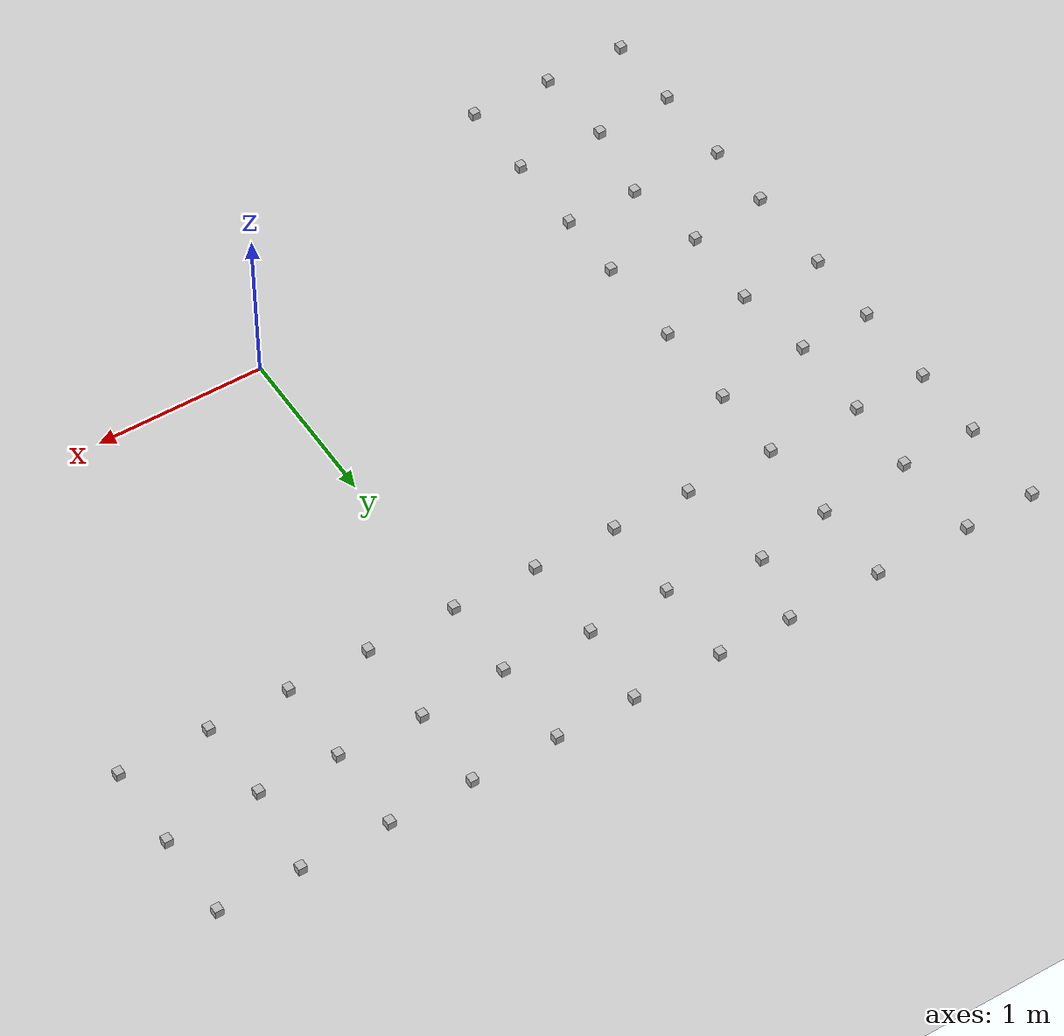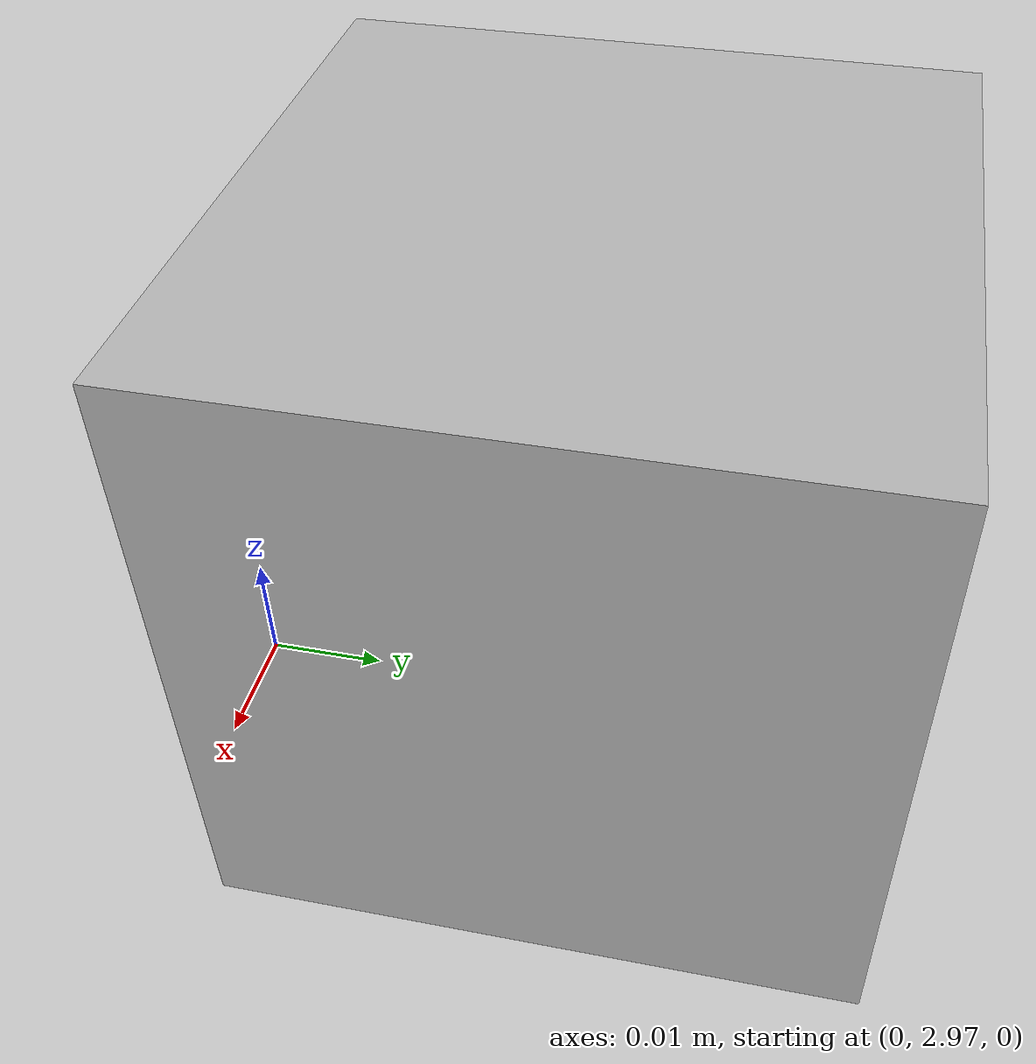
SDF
<sdf version="1.4">
 <world name="default">
  <model name="ground_plane">
   <static>1</static>
   <link name="link">
    <collision name="collision">
     <geometry><plane><normal>0 0 1</normal><size>100 100</size></plane></geometry>
     <surface><friction><ode><mu>100</mu><mu2>50</mu2></ode></friction></surface>
    </collision>
    <visual name="visual">
     <cast_shadows>0</cast_shadows>
     <geometry><plane><normal>0 0 1</normal><size>100 100</size></plane></geometry>
     <material>
      <script><uri>file://media/materials/scripts/gazebo.material</uri><name>Gazebo/Grey</name></script>
     </material>
    </visual>
    <velocity_decay><linear>0</linear><angular>0</angular></velocity_decay>
   </link>
  </model>
  <light name="sun" type="directional">
   <pose>0 0 10 0 -0 0</pose>
   <diffuse>0.8 0.8 0.8 1</diffuse>
   <specular>0.2 0.2 0.2 1</specular>
   <attenuation>
    <range>1000</range>
    <constant>0.9</constant>
    <linear>0.01</linear>
    <quadratic>0.001</quadratic>
   </attenuation>
   <direction>-0.5 0.1 -0.9</direction>
  </light>
  <plugin name="SetupWorld" filename="libgazebo_plugins.so"/>
  <physics type="ode">
   <max_step_size>0.001</max_step_size>
   <real_time_factor>1</real_time_factor>
   <real_time_update_rate>1000</real_time_update_rate>
   <gravity>0 0 -9.8</gravity>
  </physics>
  <scene><ambient>0.4 0.4 0.4 1</ambient><background>0.7 0.7 0.7 1</background><shadows>1</shadows></scene>
  <spherical_coordinates>
   <surface_model>EARTH_WGS84</surface_model>
   <latitude_deg>0</latitude_deg>
   <longitude_deg>0</longitude_deg>
   <elevation>0</elevation>
   <heading_deg>0</heading_deg>
  </spherical_coordinates>
  <model name="at0">
   <static>1</static>
   <link name="link">
    <pose>0 0 0.025 0 -0 0</pose>
    <inertial>
     <mass>0.1</mass>
     <inertia><ixx>4e-05</ixx><ixy>0</ixy><ixz>0</ixz><iyy>4e-05</iyy><iyz>0</iyz><izz>4e-05</izz></inertia>
    </inertial>
    <visual name="visual">
     <transparency>0.1</transparency>
     <geometry><box><size>0.05 0.05 0.05</size></box></geometry>
     <material>
      <script>
       <uri>model://at0/materials/scripts</uri>
       <uri>model://at0/materials/textures</uri>
       <name>at0/Diffuse</name>
      </script>
     </material>
    </visual>
    <collision name="collision">
     <pose>0 0 -0.0125 0 -0 0</pose>
     <geometry><box><size>0.05 0.05 0.025</size></box></geometry>
     <surface><friction><ode><mu>0.8</mu><mu2>0.7</mu2></ode></friction></surface>
    </collision>
    <velocity_decay><linear>0</linear><angular>0</angular></velocity_decay>
   </link>
   <pose>-1.54043 2.592 0 0 -0 0</pose>
  </model>
  <model name="at0_0">
   <static>1</static>
   <link name="link">
    <pose>0 0 0.025 0 -0 0</pose>
    <inertial>
     <mass>0.1</mass>
     <inertia><ixx>4e-05</ixx><ixy>0</ixy><ixz>0</ixz><iyy>4e-05</iyy><iyz>0</iyz><izz>4e-05</izz></inertia>
    </inertial>
    <visual name="visual">
     <transparency>0.1</transparency>
     <geometry><box><size>0.05 0.05 0.05</size></box></geometry>
     <material>
      <script>
       <uri>model://at0/materials/scripts</uri>
       <uri>model://at0/materials/textures</uri>
       <name>at0/Diffuse</name>
      </script>
     </material>
    </visual>
    <collision name="collision">
     <pose>0 0 -0.0125 0 -0 0</pose>
     <geometry><box><size>0.05 0.05 0.025</size></box></geometry>
     <surface><friction><ode><mu>0.8</mu><mu2>0.7</mu2></ode></friction></surface>
    </collision>
    <velocity_decay><linear>0</linear><angular>0</angular></velocity_decay>
   </link>
   <pose>-2 2 0 0 -0 0</pose>
  </model>
  <model name="at0_1">
   <static>1</static>
   <link name="link">
    <pose>0 0 0.025 0 -0 0</pose>
    <inertial>
     <mass>0.1</mass>
     <inertia><ixx>4e-05</ixx><ixy>0</ixy><ixz>0</ixz><iyy>4e-05</iyy><iyz>0</iyz><izz>4e-05</izz></inertia>
    </inertial>
    <visual name="visual">
     <transparency>0.1</transparency>
     <geometry><box><size>0.05 0.05 0.05</size></box></geometry>
     <material>
      <script>
       <uri>model://at0/materials/scripts</uri>
       <uri>model://at0/materials/textures</uri>
       <name>at0/Diffuse</name>
      </script>
     </material>
    </visual>
    <collision name="collision">
     <pose>0 0 -0.0125 0 -0 0</pose>
     <geometry><box><size>0.05 0.05 0.025</size></box></geometry>
     <surface><friction><ode><mu>0.8</mu><mu2>0.7</mu2></ode></friction></surface>
    </collision>
    <velocity_decay><linear>0</linear><angular>0</angular></velocity_decay>
   </link>
   <pose>-2 2.50634 0 0 -0 0</pose>
  </model>
  <model name="at0_2">
   <static>1</static>
   <link name="link">
    <pose>0 0 0.025 0 -0 0</pose>
    <inertial>
     <mass>0.1</mass>
     <inertia><ixx>4e-05</ixx><ixy>0</ixy><ixz>0</ixz><iyy>4e-05</iyy><iyz>0</iyz><izz>4e-05</izz></inertia>
    </inertial>
    <visual name="visual">
     <transparency>0.1</transparency>
     <geometry><box><size>0.05 0.05 0.05</size></box></geometry>
     <material>
      <script>
       <uri>model://at0/materials/scripts</uri>
       <uri>model://at0/materials/textures</uri>
       <name>at0/Diffuse</name>
      </script>
     </material>
    </visual>
    <collision name="collision">
     <pose>0 0 -0.0125 0 -0 0</pose>
     <geometry><box><size>0.05 0.05 0.025</size></box></geometry>
     <surface><friction><ode><mu>0.8</mu><mu2>0.7</mu2></ode></friction></surface>
    </collision>
    <velocity_decay><linear>0</linear><angular>0</angular></velocity_decay>
   </link>
   <pose>-2 3 0 0 -0 0</pose>
  </model>
  <model name="at0_3">
   <static>1</static>
   <link name="link">
    <pose>0 0 0.025 0 -0 0</pose>
    <inertial>
     <mass>0.1</mass>
     <inertia><ixx>4e-05</ixx><ixy>0</ixy><ixz>0</ixz><iyy>4e-05</iyy><iyz>0</iyz><izz>4e-05</izz></inertia>
    </inertial>
    <visual name="visual">
     <transparency>0.1</transparency>
     <geometry><box><size>0.05 0.05 0.05</size></box></geometry>
     <material>
      <script>
       <uri>model://at0/materials/scripts</uri>
       <uri>model://at0/materials/textures</uri>
       <name>at0/Diffuse</name>
      </script>
     </material>
    </visual>
    <collision name="collision">
     <pose>0 0 -0.0125 0 -0 0</pose>
     <geometry><box><size>0.05 0.05 0.025</size></box></geometry>
     <surface><friction><ode><mu>0.8</mu><mu2>0.7</mu2></ode></friction></surface>
    </collision>
    <velocity_decay><linear>0</linear><angular>0</angular></velocity_decay>
   </link>
   <pose>-1.43683 3 0 0 -0 0</pose>
  </model>
  <model name="at0_4">
   <static>1</static>
   <link name="link">
    <pose>0 0 0.025 0 -0 0</pose>
    <inertial>
     <mass>0.1</mass>
     <inertia><ixx>4e-05</ixx><ixy>0</ixy><ixz>0</ixz><iyy>4e-05</iyy><iyz>0</iyz><izz>4e-05</izz></inertia>
    </inertial>
    <visual name="visual">
     <transparency>0.1</transparency>
     <geometry><box><size>0.05 0.05 0.05</size></box></geometry>
     <material>
      <script>
       <uri>model://at0/materials/scripts</uri>
       <uri>model://at0/materials/textures</uri>
       <name>at0/Diffuse</name>
      </script>
     </material>
    </visual>
    <collision name="collision">
     <pose>0 0 -0.0125 0 -0 0</pose>
     <geometry><box><size>0.05 0.05 0.025</size></box></geometry>
     <surface><friction><ode><mu>0.8</mu><mu2>0.7</mu2></ode></friction></surface>
    </collision>
    <velocity_decay><linear>0</linear><angular>0</angular></velocity_decay>
   </link>
   <pose>-1 3 0 0 -0 0</pose>
  </model>
  <model name="at0_5">
   <static>1</static>
   <link name="link">
    <pose>0 0 0.025 0 -0 0</pose>
    <inertial>
     <mass>0.1</mass>
     <inertia><ixx>4e-05</ixx><ixy>0</ixy><ixz>0</ixz><iyy>4e-05</iyy><iyz>0</iyz><izz>4e-05</izz></inertia>
    </inertial>
    <visual name="visual">
     <transparency>0.1</transparency>
     <geometry><box><size>0.05 0.05 0.05</size></box></geometry>
     <material>
      <script>
       <uri>model://at0/materials/scripts</uri>
       <uri>model://at0/materials/textures</uri>
       <name>at0/Diffuse</name>
      </script>
     </material>
    </visual>
    <collision name="collision">
     <pose>0 0 -0.0125 0 -0 0</pose>
     <geometry><box><size>0.05 0.05 0.025</size></box></geometry>
     <surface><friction><ode><mu>0.8</mu><mu2>0.7</mu2></ode></friction></surface>
    </collision>
    <velocity_decay><linear>0</linear><angular>0</angular></velocity_decay>
   </link>
   <pose>-1 2 0 0 -0 0</pose>
  </model>
  <model name="at0_6">
   <static>1</static>
   <link name="link">
    <pose>0 0 0.025 0 -0 0</pose>
    <inertial>
     <mass>0.1</mass>
     <inertia><ixx>4e-05</ixx><ixy>0</ixy><ixz>0</ixz><iyy>4e-05</iyy><iyz>0</iyz><izz>4e-05</izz></inertia>
    </inertial>
    <visual name="visual">
     <transparency>0.1</transparency>
     <geometry><box><size>0.05 0.05 0.05</size></box></geometry>
     <material>
      <script>
       <uri>model://at0/materials/scripts</uri>
       <uri>model://at0/materials/textures</uri>
       <name>at0/Diffuse</name>
      </script>
     </material>
    </visual>
    <collision name="collision">
     <pose>0 0 -0.0125 0 -0 0</pose>
     <geometry><box><size>0.05 0.05 0.025</size></box></geometry>
     <surface><friction><ode><mu>0.8</mu><mu2>0.7</mu2></ode></friction></surface>
    </collision>
    <velocity_decay><linear>0</linear><angular>0</angular></velocity_decay>
   </link>
   <pose>-1 2.50258 0 0 -0 0</pose>
  </model>
  <model name="at0_7">
   <static>1</static>
   <link name="link">
    <pose>0 0 0.025 0 -0 0</pose>
    <inertial>
     <mass>0.1</mass>
     <inertia><ixx>4e-05</ixx><ixy>0</ixy><ixz>0</ixz><iyy>4e-05</iyy><iyz>0</iyz><izz>4e-05</izz></inertia>
    </inertial>
    <visual name="visual">
     <transparency>0.1</transparency>
     <geometry><box><size>0.05 0.05 0.05</size></box></geometry>
     <material>
      <script>
       <uri>model://at0/materials/scripts</uri>
       <uri>model://at0/materials/textures</uri>
       <name>at0/Diffuse</name>
      </script>
     </material>
    </visual>
    <collision name="collision">
     <pose>0 0 -0.0125 0 -0 0</pose>
     <geometry><box><size>0.05 0.05 0.025</size></box></geometry>
     <surface><friction><ode><mu>0.8</mu><mu2>0.7</mu2></ode></friction></surface>
    </collision>
    <velocity_decay><linear>0</linear><angular>0</angular></velocity_decay>
   </link>
   <pose>-1.46869 2 0 0 -0 0</pose>
  </model>
  <model name="at0_8">
   <static>1</static>
   <link name="link">
    <pose>0 0 0.025 0 -0 0</pose>
    <inertial>
     <mass>0.1</mass>
     <inertia><ixx>4e-05</ixx><ixy>0</ixy><ixz>0</ixz><iyy>4e-05</iyy><iyz>0</iyz><izz>4e-05</izz></inertia>
    </inertial>
    <visual name="visual">
     <transparency>0.1</transparency>
     <geometry><box><size>0.05 0.05 0.05</size></box></geometry>
     <material>
      <script>
       <uri>model://at0/materials/scripts</uri>
       <uri>model://at0/materials/textures</uri>
       <name>at0/Diffuse</name>
      </script>
     </material>
    </visual>
    <collision name="collision">
     <pose>0 0 -0.0125 0 -0 0</pose>
     <geometry><box><size>0.05 0.05 0.025</size></box></geometry>
     <surface><friction><ode><mu>0.8</mu><mu2>0.7</mu2></ode></friction></surface>
    </collision>
    <velocity_decay><linear>0</linear><angular>0</angular></velocity_decay>
   </link>
   <pose>-0.469874 3 0 0 -0 0</pose>
  </model>
  <model name="at0_9">
   <static>1</static>
   <link name="link">
    <pose>0 0 0.025 0 -0 0</pose>
    <inertial>
     <mass>0.1</mass>
     <inertia><ixx>4e-05</ixx><ixy>0</ixy><ixz>0</ixz><iyy>4e-05</iyy><iyz>0</iyz><izz>4e-05</izz></inertia>
    </inertial>
    <visual name="visual">
     <transparency>0.1</transparency>
     <geometry><box><size>0.05 0.05 0.05</size></box></geometry>
     <material>
      <script>
       <uri>model://at0/materials/scripts</uri>
       <uri>model://at0/materials/textures</uri>
       <name>at0/Diffuse</name>
      </script>
     </material>
    </visual>
    <collision name="collision">
     <pose>0 0 -0.0125 0 -0 0</pose>
     <geometry><box><size>0.05 0.05 0.025</size></box></geometry>
     <surface><friction><ode><mu>0.8</mu><mu2>0.7</mu2></ode></friction></surface>
    </collision>
    <velocity_decay><linear>0</linear><angular>0</angular></velocity_decay>
   </link>
   <pose>0 3 0 0 -0 0</pose>
  </model>
  <model name="at0_10">
   <static>1</static>
   <link name="link">
    <pose>0 0 0.025 0 -0 0</pose>
    <inertial>
     <mass>0.1</mass>
     <inertia><ixx>4e-05</ixx><ixy>0</ixy><ixz>0</ixz><iyy>4e-05</iyy><iyz>0</iyz><izz>4e-05</izz></inertia>
    </inertial>
    <visual name="visual">
     <transparency>0.1</transparency>
     <geometry><box><size>0.05 0.05 0.05</size></box></geometry>
     <material>
      <script>
       <uri>model://at0/materials/scripts</uri>
       <uri>model://at0/materials/textures</uri>
       <name>at0/Diffuse</name>
      </script>
     </material>
    </visual>
    <collision name="collision">
     <pose>0 0 -0.0125 0 -0 0</pose>
     <geometry><box><size>0.05 0.05 0.025</size></box></geometry>
     <surface><friction><ode><mu>0.8</mu><mu2>0.7</mu2></ode></friction></surface>
    </collision>
    <velocity_decay><linear>0</linear><angular>0</angular></velocity_decay>
   </link>
   <pose>0 2.48596 0 0 -0 0</pose>
  </model>
  <model name="at0_11">
   <static>1</static>
   <link name="link">
    <pose>0 0 0.025 0 -0 0</pose>
    <inertial>
     <mass>0.1</mass>
     <inertia><ixx>4e-05</ixx><ixy>0</ixy><ixz>0</ixz><iyy>4e-05</iyy><iyz>0</iyz><izz>4e-05</izz></inertia>
    </inertial>
    <visual name="visual">
     <transparency>0.1</transparency>
     <geometry><box><size>0.05 0.05 0.05</size></box></geometry>
     <material>
      <script>
       <uri>model://at0/materials/scripts</uri>
       <uri>model://at0/materials/textures</uri>
       <name>at0/Diffuse</name>
      </script>
     </material>
    </visual>
    <collision name="collision">
     <pose>0 0 -0.0125 0 -0 0</pose>
     <geometry><box><size>0.05 0.05 0.025</size></box></geometry>
     <surface><friction><ode><mu>0.8</mu><mu2>0.7</mu2></ode></friction></surface>
    </collision>
    <velocity_decay><linear>0</linear><angular>0</angular></velocity_decay>
   </link>
   <pose>-0.501759 2 0 0 -0 0</pose>
  </model>
  <model name="at0_12">
   <static>1</static>
   <link name="link">
    <pose>0 0 0.025 0 -0 0</pose>
    <inertial>
     <mass>0.1</mass>
     <inertia><ixx>4e-05</ixx><ixy>0</ixy><ixz>0</ixz><iyy>4e-05</iyy><iyz>0</iyz><izz>4e-05</izz></inertia>
    </inertial>
    <visual name="visual">
     <transparency>0.1</transparency>
     <geometry><box><size>0.05 0.05 0.05</size></box></geometry>
     <material>
      <script>
       <uri>model://at0/materials/scripts</uri>
       <uri>model://at0/materials/textures</uri>
       <name>at0/Diffuse</name>
      </script>
     </material>
    </visual>
    <collision name="collision">
     <pose>0 0 -0.0125 0 -0 0</pose>
     <geometry><box><size>0.05 0.05 0.025</size></box></geometry>
     <surface><friction><ode><mu>0.8</mu><mu2>0.7</mu2></ode></friction></surface>
    </collision>
    <velocity_decay><linear>0</linear><angular>0</angular></velocity_decay>
   </link>
   <pose>-0.514878 2.51621 0 0 -0 0</pose>
  </model>
  <model name="at0_13">
   <static>1</static>
   <link name="link">
    <pose>0 0 0.025 0 -0 0</pose>
    <inertial>
     <mass>0.1</mass>
     <inertia><ixx>4e-05</ixx><ixy>0</ixy><ixz>0</ixz><iyy>4e-05</iyy><iyz>0</iyz><izz>4e-05</izz></inertia>
    </inertial>
    <visual name="visual">
     <transparency>0.1</transparency>
     <geometry><box><size>0.05 0.05 0.05</size></box></geometry>
     <material>
      <script>
       <uri>model://at0/materials/scripts</uri>
       <uri>model://at0/materials/textures</uri>
       <name>at0/Diffuse</name>
      </script>
     </material>
    </visual>
    <collision name="collision">
     <pose>0 0 -0.0125 0 -0 0</pose>
     <geometry><box><size>0.05 0.05 0.025</size></box></geometry>
     <surface><friction><ode><mu>0.8</mu><mu2>0.7</mu2></ode></friction></surface>
    </collision>
    <velocity_decay><linear>0</linear><angular>0</angular></velocity_decay>
   </link>
   <pose>0 2 0 0 -0 0</pose>
  </model>
  <model name="at0_14">
   <static>1</static>
   <link name="link">
    <pose>0 0 0.025 0 -0 0</pose>
    <inertial>
     <mass>0.1</mass>
     <inertia><ixx>4e-05</ixx><ixy>0</ixy><ixz>0</ixz><iyy>4e-05</iyy><iyz>0</iyz><izz>4e-05</izz></inertia>
    </inertial>
    <visual name="visual">
     <transparency>0.1</transparency>
     <geometry><box><size>0.05 0.05 0.05</size></box></geometry>
     <material>
      <script>
       <uri>model://at0/materials/scripts</uri>
       <uri>model://at0/materials/textures</uri>
       <name>at0/Diffuse</name>
      </script>
     </material>
    </visual>
    <collision name="collision">
     <pose>0 0 -0.0125 0 -0 0</pose>
     <geometry><box><size>0.05 0.05 0.025</size></box></geometry>
     <surface><friction><ode><mu>0.8</mu><mu2>0.7</mu2></ode></friction></surface>
    </collision>
    <velocity_decay><linear>0</linear><angular>0</angular></velocity_decay>
   </link>
   <pose>1 3 0 0 -0 0</pose>
  </model>
  <model name="at0_15">
   <static>1</static>
   <link name="link">
    <pose>0 0 0.025 0 -0 0</pose>
    <inertial>
     <mass>0.1</mass>
     <inertia><ixx>4e-05</ixx><ixy>0</ixy><ixz>0</ixz><iyy>4e-05</iyy><iyz>0</iyz><izz>4e-05</izz></inertia>
    </inertial>
    <visual name="visual">
     <transparency>0.1</transparency>
     <geometry><box><size>0.05 0.05 0.05</size></box></geometry>
     <material>
      <script>
       <uri>model://at0/materials/scripts</uri>
       <uri>model://at0/materials/textures</uri>
       <name>at0/Diffuse</name>
      </script>
     </material>
    </visual>
    <collision name="collision">
     <pose>0 0 -0.0125 0 -0 0</pose>
     <geometry><box><size>0.05 0.05 0.025</size></box></geometry>
     <surface><friction><ode><mu>0.8</mu><mu2>0.7</mu2></ode></friction></surface>
    </collision>
    <velocity_decay><linear>0</linear><angular>0</angular></velocity_decay>
   </link>
   <pose>0.510168 3 0 0 -0 0</pose>
  </model>
  <model name="at0_16">
   <static>1</static>
   <link name="link">
    <pose>0 0 0.025 0 -0 0</pose>
    <inertial>
     <mass>0.1</mass>
     <inertia><ixx>4e-05</ixx><ixy>0</ixy><ixz>0</ixz><iyy>4e-05</iyy><iyz>0</iyz><izz>4e-05</izz></inertia>
    </inertial>
    <visual name="visual">
     <transparency>0.1</transparency>
     <geometry><box><size>0.05 0.05 0.05</size></box></geometry>
     <material>
      <script>
       <uri>model://at0/materials/scripts</uri>
       <uri>model://at0/materials/textures</uri>
       <name>at0/Diffuse</name>
      </script>
     </material>
    </visual>
    <collision name="collision">
     <pose>0 0 -0.0125 0 -0 0</pose>
     <geometry><box><size>0.05 0.05 0.025</size></box></geometry>
     <surface><friction><ode><mu>0.8</mu><mu2>0.7</mu2></ode></friction></surface>
    </collision>
    <velocity_decay><linear>0</linear><angular>0</angular></velocity_decay>
   </link>
   <pose>1 2.49709 0 0 -0 0</pose>
  </model>
  <model name="at0_17">
   <static>1</static>
   <link name="link">
    <pose>0 0 0.025 0 -0 0</pose>
    <inertial>
     <mass>0.1</mass>
     <inertia><ixx>4e-05</ixx><ixy>0</ixy><ixz>0</ixz><iyy>4e-05</iyy><iyz>0</iyz><izz>4e-05</izz></inertia>
    </inertial>
    <visual name="visual">
     <transparency>0.1</transparency>
     <geometry><box><size>0.05 0.05 0.05</size></box></geometry>
     <material>
      <script>
       <uri>model://at0/materials/scripts</uri>
       <uri>model://at0/materials/textures</uri>
       <name>at0/Diffuse</name>
      </script>
     </material>
    </visual>
    <collision name="collision">
     <pose>0 0 -0.0125 0 -0 0</pose>
     <geometry><box><size>0.05 0.05 0.025</size></box></geometry>
     <surface><friction><ode><mu>0.8</mu><mu2>0.7</mu2></ode></friction></surface>
    </collision>
    <velocity_decay><linear>0</linear><angular>0</angular></velocity_decay>
   </link>
   <pose>0.522175 2 0 0 -0 0</pose>
  </model>
  <model name="at0_18">
   <static>1</static>
   <link name="link">
    <pose>0 0 0.025 0 -0 0</pose>
    <inertial>
     <mass>0.1</mass>
     <inertia><ixx>4e-05</ixx><ixy>0</ixy><ixz>0</ixz><iyy>4e-05</iyy><iyz>0</iyz><izz>4e-05</izz></inertia>
    </inertial>
    <visual name="visual">
     <transparency>0.1</transparency>
     <geometry><box><size>0.05 0.05 0.05</size></box></geometry>
     <material>
      <script>
       <uri>model://at0/materials/scripts</uri>
       <uri>model://at0/materials/textures</uri>
       <name>at0/Diffuse</name>
      </script>
     </material>
    </visual>
    <collision name="collision">
     <pose>0 0 -0.0125 0 -0 0</pose>
     <geometry><box><size>0.05 0.05 0.025</size></box></geometry>
     <surface><friction><ode><mu>0.8</mu><mu2>0.7</mu2></ode></friction></surface>
    </collision>
    <velocity_decay><linear>0</linear><angular>0</angular></velocity_decay>
   </link>
   <pose>0.508937 2.51354 0 0 -0 0</pose>
  </model>
  <model name="at0_19">
   <static>1</static>
   <link name="link">
    <pose>0 0 0.025 0 -0 0</pose>
    <inertial>
     <mass>0.1</mass>
     <inertia><ixx>4e-05</ixx><ixy>0</ixy><ixz>0</ixz><iyy>4e-05</iyy><iyz>0</iyz><izz>4e-05</izz></inertia>
    </inertial>
    <visual name="visual">
     <transparency>0.1</transparency>
     <geometry><box><size>0.05 0.05 0.05</size></box></geometry>
     <material>
      <script>
       <uri>model://at0/materials/scripts</uri>
       <uri>model://at0/materials/textures</uri>
       <name>at0/Diffuse</name>
      </script>
     </material>
    </visual>
    <collision name="collision">
     <pose>0 0 -0.0125 0 -0 0</pose>
     <geometry><box><size>0.05 0.05 0.025</size></box></geometry>
     <surface><friction><ode><mu>0.8</mu><mu2>0.7</mu2></ode></friction></surface>
    </collision>
    <velocity_decay><linear>0</linear><angular>0</angular></velocity_decay>
   </link>
   <pose>1 2 0 0 -0 0</pose>
  </model>
  <model name="at0_20">
   <static>1</static>
   <link name="link">
    <pose>0 0 0.025 0 -0 0</pose>
    <inertial>
     <mass>0.1</mass>
     <inertia><ixx>4e-05</ixx><ixy>0</ixy><ixz>0</ixz><iyy>4e-05</iyy><iyz>0</iyz><izz>4e-05</izz></inertia>
    </inertial>
    <visual name="visual">
     <transparency>0.1</transparency>
     <geometry><box><size>0.05 0.05 0.05</size></box></geometry>
     <material>
      <script>
       <uri>model://at0/materials/scripts</uri>
       <uri>model://at0/materials/textures</uri>
       <name>at0/Diffuse</name>
      </script>
     </material>
    </visual>
    <collision name="collision">
     <pose>0 0 -0.0125 0 -0 0</pose>
     <geometry><box><size>0.05 0.05 0.025</size></box></geometry>
     <surface><friction><ode><mu>0.8</mu><mu2>0.7</mu2></ode></friction></surface>
    </collision>
    <velocity_decay><linear>0</linear><angular>0</angular></velocity_decay>
   </link>
   <pose>2 3 0 0 -0 0</pose>
  </model>
  <model name="at0_21">
   <static>1</static>
   <link name="link">
    <pose>0 0 0.025 0 -0 0</pose>
    <inertial>
     <mass>0.1</mass>
     <inertia><ixx>4e-05</ixx><ixy>0</ixy><ixz>0</ixz><iyy>4e-05</iyy><iyz>0</iyz><izz>4e-05</izz></inertia>
    </inertial>
    <visual name="visual">
     <transparency>0.1</transparency>
     <geometry><box><size>0.05 0.05 0.05</size></box></geometry>
     <material>
      <script>
       <uri>model://at0/materials/scripts</uri>
       <uri>model://at0/materials/textures</uri>
       <name>at0/Diffuse</name>
      </script>
     </material>
    </visual>
    <collision name="collision">
     <pose>0 0 -0.0125 0 -0 0</pose>
     <geometry><box><size>0.05 0.05 0.025</size></box></geometry>
     <surface><friction><ode><mu>0.8</mu><mu2>0.7</mu2></ode></friction></surface>
    </collision>
    <velocity_decay><linear>0</linear><angular>0</angular></velocity_decay>
   </link>
   <pose>2 2.49507 0 0 -0 0</pose>
  </model>
  <model name="at0_22">
   <static>1</static>
   <link name="link">
    <pose>0 0 0.025 0 -0 0</pose>
    <inertial>
     <mass>0.1</mass>
     <inertia><ixx>4e-05</ixx><ixy>0</ixy><ixz>0</ixz><iyy>4e-05</iyy><iyz>0</iyz><izz>4e-05</izz></inertia>
    </inertial>
    <visual name="visual">
     <transparency>0.1</transparency>
     <geometry><box><size>0.05 0.05 0.05</size></box></geometry>
     <material>
      <script>
       <uri>model://at0/materials/scripts</uri>
       <uri>model://at0/materials/textures</uri>
       <name>at0/Diffuse</name>
      </script>
     </material>
    </visual>
    <collision name="collision">
     <pose>0 0 -0.0125 0 -0 0</pose>
     <geometry><box><size>0.05 0.05 0.025</size></box></geometry>
     <surface><friction><ode><mu>0.8</mu><mu2>0.7</mu2></ode></friction></surface>
    </collision>
    <velocity_decay><linear>0</linear><angular>0</angular></velocity_decay>
   </link>
   <pose>2 2 0 0 -0 0</pose>
  </model>
  <model name="at0_23">
   <static>1</static>
   <link name="link">
    <pose>0 0 0.025 0 -0 0</pose>
    <inertial>
     <mass>0.1</mass>
     <inertia><ixx>4e-05</ixx><ixy>0</ixy><ixz>0</ixz><iyy>4e-05</iyy><iyz>0</iyz><izz>4e-05</izz></inertia>
    </inertial>
    <visual name="visual">
     <transparency>0.1</transparency>
     <geometry><box><size>0.05 0.05 0.05</size></box></geometry>
     <material>
      <script>
       <uri>model://at0/materials/scripts</uri>
       <uri>model://at0/materials/textures</uri>
       <name>at0/Diffuse</name>
      </script>
     </material>
    </visual>
    <collision name="collision">
     <pose>0 0 -0.0125 0 -0 0</pose>
     <geometry><box><size>0.05 0.05 0.025</size></box></geometry>
     <surface><friction><ode><mu>0.8</mu><mu2>0.7</mu2></ode></friction></surface>
    </collision>
    <velocity_decay><linear>0</linear><angular>0</angular></velocity_decay>
   </link>
   <pose>1.45955 2.48181 0 0 -0 0</pose>
  </model>
  <model name="at0_24">
   <static>1</static>
   <link name="link">
    <pose>0 0 0.025 0 -0 0</pose>
    <inertial>
     <mass>0.1</mass>
     <inertia><ixx>4e-05</ixx><ixy>0</ixy><ixz>0</ixz><iyy>4e-05</iyy><iyz>0</iyz><izz>4e-05</izz></inertia>
    </inertial>
    <visual name="visual">
     <transparency>0.1</transparency>
     <geometry><box><size>0.05 0.05 0.05</size></box></geometry>
     <material>
      <script>
       <uri>model://at0/materials/scripts</uri>
       <uri>model://at0/materials/textures</uri>
       <name>at0/Diffuse</name>
      </script>
     </material>
    </visual>
    <collision name="collision">
     <pose>0 0 -0.0125 0 -0 0</pose>
     <geometry><box><size>0.05 0.05 0.025</size></box></geometry>
     <surface><friction><ode><mu>0.8</mu><mu2>0.7</mu2></ode></friction></surface>
    </collision>
    <velocity_decay><linear>0</linear><angular>0</angular></velocity_decay>
   </link>
   <pose>1.5195 3 0 0 -0 0</pose>
  </model>
  <model name="at0_25">
   <static>1</static>
   <link name="link">
    <pose>0 0 0.025 0 -0 0</pose>
    <inertial>
     <mass>0.1</mass>
     <inertia><ixx>4e-05</ixx><ixy>0</ixy><ixz>0</ixz><iyy>4e-05</iyy><iyz>0</iyz><izz>4e-05</izz></inertia>
    </inertial>
    <visual name="visual">
     <transparency>0.1</transparency>
     <geometry><box><size>0.05 0.05 0.05</size></box></geometry>
     <material>
      <script>
       <uri>model://at0/materials/scripts</uri>
       <uri>model://at0/materials/textures</uri>
       <name>at0/Diffuse</name>
      </script>
     </material>
    </visual>
    <collision name="collision">
     <pose>0 0 -0.0125 0 -0 0</pose>
     <geometry><box><size>0.05 0.05 0.025</size></box></geometry>
     <surface><friction><ode><mu>0.8</mu><mu2>0.7</mu2></ode></friction></surface>
    </collision>
    <velocity_decay><linear>0</linear><angular>0</angular></velocity_decay>
   </link>
   <pose>1.4729 2 0 0 -0 0</pose>
  </model>
  <model name="at0_31">
   <static>1</static>
   <link name="link">
    <pose>0 0 0.025 0 -0 0</pose>
    <inertial>
     <mass>0.1</mass>
     <inertia><ixx>4e-05</ixx><ixy>0</ixy><ixz>0</ixz><iyy>4e-05</iyy><iyz>0</iyz><izz>4e-05</izz></inertia>
    </inertial>
    <visual name="visual">
     <transparency>0.1</transparency>
     <geometry><box><size>0.05 0.05 0.05</size></box></geometry>
     <material>
      <script>
       <uri>model://at0/materials/scripts</uri>
       <uri>model://at0/materials/textures</uri>
       <name>at0/Diffuse</name>
      </script>
     </material>
    </visual>
    <collision name="collision">
     <pose>0 0 -0.0125 0 -0 0</pose>
     <geometry><box><size>0.05 0.05 0.025</size></box></geometry>
     <surface><friction><ode><mu>0.8</mu><mu2>0.7</mu2></ode></friction></surface>
    </collision>
    <velocity_decay><linear>0</linear><angular>0</angular></velocity_decay>
   </link>
   <pose>-2.54804 2.46299 0 0 -0 0</pose>
  </model>
  <model name="at0_32">
   <static>1</static>
   <link name="link">
    <pose>0 0 0.025 0 -0 0</pose>
    <inertial>
     <mass>0.1</mass>
     <inertia><ixx>4e-05</ixx><ixy>0</ixy><ixz>0</ixz><iyy>4e-05</iyy><iyz>0</iyz><izz>4e-05</izz></inertia>
    </inertial>
    <visual name="visual">
     <transparency>0.1</transparency>
     <geometry><box><size>0.05 0.05 0.05</size></box></geometry>
     <material>
      <script>
       <uri>model://at0/materials/scripts</uri>
       <uri>model://at0/materials/textures</uri>
       <name>at0/Diffuse</name>
      </script>
     </material>
    </visual>
    <collision name="collision">
     <pose>0 0 -0.0125 0 -0 0</pose>
     <geometry><box><size>0.05 0.05 0.025</size></box></geometry>
     <surface><friction><ode><mu>0.8</mu><mu2>0.7</mu2></ode></friction></surface>
    </collision>
    <velocity_decay><linear>0</linear><angular>0</angular></velocity_decay>
   </link>
   <pose>-2.57592 3 0 0 -0 0</pose>
  </model>
  <model name="at0_33">
   <static>1</static>
   <link name="link">
    <pose>0 0 0.025 0 -0 0</pose>
    <inertial>
     <mass>0.1</mass>
     <inertia><ixx>4e-05</ixx><ixy>0</ixy><ixz>0</ixz><iyy>4e-05</iyy><iyz>0</iyz><izz>4e-05</izz></inertia>
    </inertial>
    <visual name="visual">
     <transparency>0.1</transparency>
     <geometry><box><size>0.05 0.05 0.05</size></box></geometry>
     <material>
      <script>
       <uri>model://at0/materials/scripts</uri>
       <uri>model://at0/materials/textures</uri>
       <name>at0/Diffuse</name>
      </script>
     </material>
    </visual>
    <collision name="collision">
     <pose>0 0 -0.0125 0 -0 0</pose>
     <geometry><box><size>0.05 0.05 0.025</size></box></geometry>
     <surface><friction><ode><mu>0.8</mu><mu2>0.7</mu2></ode></friction></surface>
    </collision>
    <velocity_decay><linear>0</linear><angular>0</angular></velocity_decay>
   </link>
   <pose>-3 3 0 0 -0 0</pose>
  </model>
  <model name="at0_34">
   <static>1</static>
   <link name="link">
    <pose>0 0 0.025 0 -0 0</pose>
    <inertial>
     <mass>0.1</mass>
     <inertia><ixx>4e-05</ixx><ixy>0</ixy><ixz>0</ixz><iyy>4e-05</iyy><iyz>0</iyz><izz>4e-05</izz></inertia>
    </inertial>
    <visual name="visual">
     <transparency>0.1</transparency>
     <geometry><box><size>0.05 0.05 0.05</size></box></geometry>
     <material>
      <script>
       <uri>model://at0/materials/scripts</uri>
       <uri>model://at0/materials/textures</uri>
       <name>at0/Diffuse</name>
      </script>
     </material>
    </visual>
    <collision name="collision">
     <pose>0 0 -0.0125 0 -0 0</pose>
     <geometry><box><size>0.05 0.05 0.025</size></box></geometry>
     <surface><friction><ode><mu>0.8</mu><mu2>0.7</mu2></ode></friction></surface>
    </collision>
    <velocity_decay><linear>0</linear><angular>0</angular></velocity_decay>
   </link>
   <pose>-3 2.46463 0 0 -0 0</pose>
  </model>
  <model name="at0_35">
   <static>1</static>
   <link name="link">
    <pose>0 0 0.025 0 -0 0</pose>
    <inertial>
     <mass>0.1</mass>
     <inertia><ixx>4e-05</ixx><ixy>0</ixy><ixz>0</ixz><iyy>4e-05</iyy><iyz>0</iyz><izz>4e-05</izz></inertia>
    </inertial>
    <visual name="visual">
     <transparency>0.1</transparency>
     <geometry><box><size>0.05 0.05 0.05</size></box></geometry>
     <material>
      <script>
       <uri>model://at0/materials/scripts</uri>
       <uri>model://at0/materials/textures</uri>
       <name>at0/Diffuse</name>
      </script>
     </material>
    </visual>
    <collision name="collision">
     <pose>0 0 -0.0125 0 -0 0</pose>
     <geometry><box><size>0.05 0.05 0.025</size></box></geometry>
     <surface><friction><ode><mu>0.8</mu><mu2>0.7</mu2></ode></friction></surface>
    </collision>
    <velocity_decay><linear>0</linear><angular>0</angular></velocity_decay>
   </link>
   <pose>-3 2 0 0 -0 0</pose>
  </model>
  <model name="at0_36">
   <static>1</static>
   <link name="link">
    <pose>0 0 0.025 0 -0 0</pose>
    <inertial>
     <mass>0.1</mass>
     <inertia><ixx>4e-05</ixx><ixy>0</ixy><ixz>0</ixz><iyy>4e-05</iyy><iyz>0</iyz><izz>4e-05</izz></inertia>
    </inertial>
    <visual name="visual">
     <transparency>0.1</transparency>
     <geometry><box><size>0.05 0.05 0.05</size></box></geometry>
     <material>
      <script>
       <uri>model://at0/materials/scripts</uri>
       <uri>model://at0/materials/textures</uri>
       <name>at0/Diffuse</name>
      </script>
     </material>
    </visual>
    <collision name="collision">
     <pose>0 0 -0.0125 0 -0 0</pose>
     <geometry><box><size>0.05 0.05 0.025</size></box></geometry>
     <surface><friction><ode><mu>0.8</mu><mu2>0.7</mu2></ode></friction></surface>
    </collision>
    <velocity_decay><linear>0</linear><angular>0</angular></velocity_decay>
   </link>
   <pose>-2.56355 2 0 0 -0 0</pose>
  </model>
  <model name="at0_37">
   <static>1</static>
   <link name="link">
    <pose>0 0 0.025 0 -0 0</pose>
    <inertial>
     <mass>0.1</mass>
     <inertia><ixx>4e-05</ixx><ixy>0</ixy><ixz>0</ixz><iyy>4e-05</iyy><iyz>0</iyz><izz>4e-05</izz></inertia>
    </inertial>
    <visual name="visual">
     <transparency>0.1</transparency>
     <geometry><box><size>0.05 0.05 0.05</size></box></geometry>
     <material>
      <script>
       <uri>model://at0/materials/scripts</uri>
       <uri>model://at0/materials/textures</uri>
       <name>at0/Diffuse</name>
      </script>
     </material>
    </visual>
    <collision name="collision">
     <pose>0 0 -0.0125 0 -0 0</pose>
     <geometry><box><size>0.05 0.05 0.025</size></box></geometry>
     <surface><friction><ode><mu>0.8</mu><mu2>0.7</mu2></ode></friction></surface>
    </collision>
    <velocity_decay><linear>0</linear><angular>0</angular></velocity_decay>
   </link>
   <pose>-3 1.46995 0 0 -0 0</pose>
  </model>
  <model name="at0_38">
   <static>1</static>
   <link name="link">
    <pose>0 0 0.025 0 -0 0</pose>
    <inertial>
     <mass>0.1</mass>
     <inertia><ixx>4e-05</ixx><ixy>0</ixy><ixz>0</ixz><iyy>4e-05</iyy><iyz>0</iyz><izz>4e-05</izz></inertia>
    </inertial>
    <visual name="visual">
     <transparency>0.1</transparency>
     <geometry><box><size>0.05 0.05 0.05</size></box></geometry>
     <material>
      <script>
       <uri>model://at0/materials/scripts</uri>
       <uri>model://at0/materials/textures</uri>
       <name>at0/Diffuse</name>
      </script>
     </material>
    </visual>
    <collision name="collision">
     <pose>0 0 -0.0125 0 -0 0</pose>
     <geometry><box><size>0.05 0.05 0.025</size></box></geometry>
     <surface><friction><ode><mu>0.8</mu><mu2>0.7</mu2></ode></friction></surface>
    </collision>
    <velocity_decay><linear>0</linear><angular>0</angular></velocity_decay>
   </link>
   <pose>-2.56503 1.48297 0 0 -0 0</pose>
  </model>
  <model name="at0_39">
   <static>1</static>
   <link name="link">
    <pose>0 0 0.025 0 -0 0</pose>
    <inertial>
     <mass>0.1</mass>
     <inertia><ixx>4e-05</ixx><ixy>0</ixy><ixz>0</ixz><iyy>4e-05</iyy><iyz>0</iyz><izz>4e-05</izz></inertia>
    </inertial>
    <visual name="visual">
     <transparency>0.1</transparency>
     <geometry><box><size>0.05 0.05 0.05</size></box></geometry>
     <material>
      <script>
       <uri>model://at0/materials/scripts</uri>
       <uri>model://at0/materials/textures</uri>
       <name>at0/Diffuse</name>
      </script>
     </material>
    </visual>
    <collision name="collision">
     <pose>0 0 -0.0125 0 -0 0</pose>
     <geometry><box><size>0.05 0.05 0.025</size></box></geometry>
     <surface><friction><ode><mu>0.8</mu><mu2>0.7</mu2></ode></friction></surface>
    </collision>
    <velocity_decay><linear>0</linear><angular>0</angular></velocity_decay>
   </link>
   <pose>-2 1.54031 0 0 -0 0</pose>
  </model>
  <model name="at0_40">
   <static>1</static>
   <link name="link">
    <pose>0 0 0.025 0 -0 0</pose>
    <inertial>
     <mass>0.1</mass>
     <inertia><ixx>4e-05</ixx><ixy>0</ixy><ixz>0</ixz><iyy>4e-05</iyy><iyz>0</iyz><izz>4e-05</izz></inertia>
    </inertial>
    <visual name="visual">
     <transparency>0.1</transparency>
     <geometry><box><size>0.05 0.05 0.05</size></box></geometry>
     <material>
      <script>
       <uri>model://at0/materials/scripts</uri>
       <uri>model://at0/materials/textures</uri>
       <name>at0/Diffuse</name>
      </script>
     </material>
    </visual>
    <collision name="collision">
     <pose>0 0 -0.0125 0 -0 0</pose>
     <geometry><box><size>0.05 0.05 0.025</size></box></geometry>
     <surface><friction><ode><mu>0.8</mu><mu2>0.7</mu2></ode></friction></surface>
    </collision>
    <velocity_decay><linear>0</linear><angular>0</angular></velocity_decay>
   </link>
   <pose>-3 1 0 0 -0 0</pose>
  </model>
  <model name="at0_41">
   <static>1</static>
   <link name="link">
    <pose>0 0 0.025 0 -0 0</pose>
    <inertial>
     <mass>0.1</mass>
     <inertia><ixx>4e-05</ixx><ixy>0</ixy><ixz>0</ixz><iyy>4e-05</iyy><iyz>0</iyz><izz>4e-05</izz></inertia>
    </inertial>
    <visual name="visual">
     <transparency>0.1</transparency>
     <geometry><box><size>0.05 0.05 0.05</size></box></geometry>
     <material>
      <script>
       <uri>model://at0/materials/scripts</uri>
       <uri>model://at0/materials/textures</uri>
       <name>at0/Diffuse</name>
      </script>
     </material>
    </visual>
    <collision name="collision">
     <pose>0 0 -0.0125 0 -0 0</pose>
     <geometry><box><size>0.05 0.05 0.025</size></box></geometry>
     <surface><friction><ode><mu>0.8</mu><mu2>0.7</mu2></ode></friction></surface>
    </collision>
    <velocity_decay><linear>0</linear><angular>0</angular></velocity_decay>
   </link>
   <pose>-2.50795 1 0 0 -0 0</pose>
  </model>
  <model name="at0_42">
   <static>1</static>
   <link name="link">
    <pose>0 0 0.025 0 -0 0</pose>
    <inertial>
     <mass>0.1</mass>
     <inertia><ixx>4e-05</ixx><ixy>0</ixy><ixz>0</ixz><iyy>4e-05</iyy><iyz>0</iyz><izz>4e-05</izz></inertia>
    </inertial>
    <visual name="visual">
     <transparency>0.1</transparency>
     <geometry><box><size>0.05 0.05 0.05</size></box></geometry>
     <material>
      <script>
       <uri>model://at0/materials/scripts</uri>
       <uri>model://at0/materials/textures</uri>
       <name>at0/Diffuse</name>
      </script>
     </material>
    </visual>
    <collision name="collision">
     <pose>0 0 -0.0125 0 -0 0</pose>
     <geometry><box><size>0.05 0.05 0.025</size></box></geometry>
     <surface><friction><ode><mu>0.8</mu><mu2>0.7</mu2></ode></friction></surface>
    </collision>
    <velocity_decay><linear>0</linear><angular>0</angular></velocity_decay>
   </link>
   <pose>-2 1 0 0 -0 0</pose>
  </model>
  <model name="at0_43">
   <static>1</static>
   <link name="link">
    <pose>0 0 0.025 0 -0 0</pose>
    <inertial>
     <mass>0.1</mass>
     <inertia><ixx>4e-05</ixx><ixy>0</ixy><ixz>0</ixz><iyy>4e-05</iyy><iyz>0</iyz><izz>4e-05</izz></inertia>
    </inertial>
    <visual name="visual">
     <transparency>0.1</transparency>
     <geometry><box><size>0.05 0.05 0.05</size></box></geometry>
     <material>
      <script>
       <uri>model://at0/materials/scripts</uri>
       <uri>model://at0/materials/textures</uri>
       <name>at0/Diffuse</name>
      </script>
     </material>
    </visual>
    <collision name="collision">
     <pose>0 0 -0.0125 0 -0 0</pose>
     <geometry><box><size>0.05 0.05 0.025</size></box></geometry>
     <surface><friction><ode><mu>0.8</mu><mu2>0.7</mu2></ode></friction></surface>
    </collision>
    <velocity_decay><linear>0</linear><angular>0</angular></velocity_decay>
   </link>
   <pose>-3 0.43108 0 0 -0 0</pose>
  </model>
  <model name="at0_44">
   <static>1</static>
   <link name="link">
    <pose>0 0 0.025 0 -0 0</pose>
    <inertial>
     <mass>0.1</mass>
     <inertia><ixx>4e-05</ixx><ixy>0</ixy><ixz>0</ixz><iyy>4e-05</iyy><iyz>0</iyz><izz>4e-05</izz></inertia>
    </inertial>
    <visual name="visual">
     <transparency>0.1</transparency>
     <geometry><box><size>0.05 0.05 0.05</size></box></geometry>
     <material>
      <script>
       <uri>model://at0/materials/scripts</uri>
       <uri>model://at0/materials/textures</uri>
       <name>at0/Diffuse</name>
      </script>
     </material>
    </visual>
    <collision name="collision">
     <pose>0 0 -0.0125 0 -0 0</pose>
     <geometry><box><size>0.05 0.05 0.025</size></box></geometry>
     <surface><friction><ode><mu>0.8</mu><mu2>0.7</mu2></ode></friction></surface>
    </collision>
    <velocity_decay><linear>0</linear><angular>0</angular></velocity_decay>
   </link>
   <pose>-2 0.428911 0 0 -0 0</pose>
  </model>
  <model name="at0_45">
   <static>1</static>
   <link name="link">
    <pose>0 0 0.025 0 -0 0</pose>
    <inertial>
     <mass>0.1</mass>
     <inertia><ixx>4e-05</ixx><ixy>0</ixy><ixz>0</ixz><iyy>4e-05</iyy><iyz>0</iyz><izz>4e-05</izz></inertia>
    </inertial>
    <visual name="visual">
     <transparency>0.1</transparency>
     <geometry><box><size>0.05 0.05 0.05</size></box></geometry>
     <material>
      <script>
       <uri>model://at0/materials/scripts</uri>
       <uri>model://at0/materials/textures</uri>
       <name>at0/Diffuse</name>
      </script>
     </material>
    </visual>
    <collision name="collision">
     <pose>0 0 -0.0125 0 -0 0</pose>
     <geometry><box><size>0.05 0.05 0.025</size></box></geometry>
     <surface><friction><ode><mu>0.8</mu><mu2>0.7</mu2></ode></friction></surface>
    </collision>
    <velocity_decay><linear>0</linear><angular>0</angular></velocity_decay>
   </link>
   <pose>-2.5236 0.48832 0 0 -0 0</pose>
  </model>
  <model name="at0_46">
   <static>1</static>
   <link name="link">
    <pose>0 0 0.025 0 -0 0</pose>
    <inertial>
     <mass>0.1</mass>
     <inertia><ixx>4e-05</ixx><ixy>0</ixy><ixz>0</ixz><iyy>4e-05</iyy><iyz>0</iyz><izz>4e-05</izz></inertia>
    </inertial>
    <visual name="visual">
     <transparency>0.1</transparency>
     <geometry><box><size>0.05 0.05 0.05</size></box></geometry>
     <material>
      <script>
       <uri>model://at0/materials/scripts</uri>
       <uri>model://at0/materials/textures</uri>
       <name>at0/Diffuse</name>
      </script>
     </material>
    </visual>
    <collision name="collision">
     <pose>0 0 -0.0125 0 -0 0</pose>
     <geometry><box><size>0.05 0.05 0.025</size></box></geometry>
     <surface><friction><ode><mu>0.8</mu><mu2>0.7</mu2></ode></friction></surface>
    </collision>
    <velocity_decay><linear>0</linear><angular>0</angular></velocity_decay>
   </link>
   <pose>-3 0 0 0 -0 0</pose>
  </model>
  <model name="at0_47">
   <static>1</static>
   <link name="link">
    <pose>0 0 0.025 0 -0 0</pose>
    <inertial>
     <mass>0.1</mass>
     <inertia><ixx>4e-05</ixx><ixy>0</ixy><ixz>0</ixz><iyy>4e-05</iyy><iyz>0</iyz><izz>4e-05</izz></inertia>
    </inertial>
    <visual name="visual">
     <transparency>0.1</transparency>
     <geometry><box><size>0.05 0.05 0.05</size></box></geometry>
     <material>
      <script>
       <uri>model://at0/materials/scripts</uri>
       <uri>model://at0/materials/textures</uri>
       <name>at0/Diffuse</name>
      </script>
     </material>
    </visual>
    <collision name="collision">
     <pose>0 0 -0.0125 0 -0 0</pose>
     <geometry><box><size>0.05 0.05 0.025</size></box></geometry>
     <surface><friction><ode><mu>0.8</mu><mu2>0.7</mu2></ode></friction></surface>
    </collision>
    <velocity_decay><linear>0</linear><angular>0</angular></velocity_decay>
   </link>
   <pose>-2.43718 0 0 0 -0 0</pose>
  </model>
  <model name="at0_48">
   <static>1</static>
   <link name="link">
    <pose>0 0 0.025 0 -0 0</pose>
    <inertial>
     <mass>0.1</mass>
     <inertia><ixx>4e-05</ixx><ixy>0</ixy><ixz>0</ixz><iyy>4e-05</iyy><iyz>0</iyz><izz>4e-05</izz></inertia>
    </inertial>
    <visual name="visual">
     <transparency>0.1</transparency>
     <geometry><box><size>0.05 0.05 0.05</size></box></geometry>
     <material>
      <script>
       <uri>model://at0/materials/scripts</uri>
       <uri>model://at0/materials/textures</uri>
       <name>at0/Diffuse</name>
      </script>
     </material>
    </visual>
    <collision name="collision">
     <pose>0 0 -0.0125 0 -0 0</pose>
     <geometry><box><size>0.05 0.05 0.025</size></box></geometry>
     <surface><friction><ode><mu>0.8</mu><mu2>0.7</mu2></ode></friction></surface>
    </collision>
    <velocity_decay><linear>0</linear><angular>0</angular></velocity_decay>
   </link>
   <pose>-2 0 0 0 -0 0</pose>
  </model>
  <model name="at0_49">
   <static>1</static>
   <link name="link">
    <pose>0 0 0.025 0 -0 0</pose>
    <inertial>
     <mass>0.1</mass>
     <inertia><ixx>4e-05</ixx><ixy>0</ixy><ixz>0</ixz><iyy>4e-05</iyy><iyz>0</iyz><izz>4e-05</izz></inertia>
    </inertial>
    <visual name="visual">
     <transparency>0.1</transparency>
     <geometry><box><size>0.05 0.05 0.05</size></box></geometry>
     <material>
      <script>
       <uri>model://at0/materials/scripts</uri>
       <uri>model://at0/materials/textures</uri>
       <name>at0/Diffuse</name>
      </script>
     </material>
    </visual>
    <collision name="collision">
     <pose>0 0 -0.0125 0 -0 0</pose>
     <geometry><box><size>0.05 0.05 0.025</size></box></geometry>
     <surface><friction><ode><mu>0.8</mu><mu2>0.7</mu2></ode></friction></surface>
    </collision>
    <velocity_decay><linear>0</linear><angular>0</angular></velocity_decay>
   </link>
   <pose>-3 -0.519168 0 0 -0 0</pose>
  </model>
  <model name="at0_50">
   <static>1</static>
   <link name="link">
    <pose>0 0 0.025 0 -0 0</pose>
    <inertial>
     <mass>0.1</mass>
     <inertia><ixx>4e-05</ixx><ixy>0</ixy><ixz>0</ixz><iyy>4e-05</iyy><iyz>0</iyz><izz>4e-05</izz></inertia>
    </inertial>
    <visual name="visual">
     <transparency>0.1</transparency>
     <geometry><box><size>0.05 0.05 0.05</size></box></geometry>
     <material>
      <script>
       <uri>model://at0/materials/scripts</uri>
       <uri>model://at0/materials/textures</uri>
       <name>at0/Diffuse</name>
      </script>
     </material>
    </visual>
    <collision name="collision">
     <pose>0 0 -0.0125 0 -0 0</pose>
     <geometry><box><size>0.05 0.05 0.025</size></box></geometry>
     <surface><friction><ode><mu>0.8</mu><mu2>0.7</mu2></ode></friction></surface>
    </collision>
    <velocity_decay><linear>0</linear><angular>0</angular></velocity_decay>
   </link>
   <pose>-2 -0.506447 0 0 -0 0</pose>
  </model>
  <model name="at0_51">
   <static>1</static>
   <link name="link">
    <pose>0 0 0.025 0 -0 0</pose>
    <inertial>
     <mass>0.1</mass>
     <inertia><ixx>4e-05</ixx><ixy>0</ixy><ixz>0</ixz><iyy>4e-05</iyy><iyz>0</iyz><izz>4e-05</izz></inertia>
    </inertial>
    <visual name="visual">
     <transparency>0.1</transparency>
     <geometry><box><size>0.05 0.05 0.05</size></box></geometry>
     <material>
      <script>
       <uri>model://at0/materials/scripts</uri>
       <uri>model://at0/materials/textures</uri>
       <name>at0/Diffuse</name>
      </script>
     </material>
    </visual>
    <collision name="collision">
     <pose>0 0 -0.0125 0 -0 0</pose>
     <geometry><box><size>0.05 0.05 0.025</size></box></geometry>
     <surface><friction><ode><mu>0.8</mu><mu2>0.7</mu2></ode></friction></surface>
    </collision>
    <velocity_decay><linear>0</linear><angular>0</angular></velocity_decay>
   </link>
   <pose>-2.526 -0.49148 0 0 -0 0</pose>
  </model>
  <model name="at0_52">
   <static>1</static>
   <link name="link">
    <pose>0 0 0.025 0 -0 0</pose>
    <inertial>
     <mass>0.1</mass>
     <inertia><ixx>4e-05</ixx><ixy>0</ixy><ixz>0</ixz><iyy>4e-05</iyy><iyz>0</iyz><izz>4e-05</izz></inertia>
    </inertial>
    <visual name="visual">
     <transparency>0.1</transparency>
     <geometry><box><size>0.05 0.05 0.05</size></box></geometry>
     <material>
      <script>
       <uri>model://at0/materials/scripts</uri>
       <uri>model://at0/materials/textures</uri>
       <name>at0/Diffuse</name>
      </script>
     </material>
    </visual>
    <collision name="collision">
     <pose>0 0 -0.0125 0 -0 0</pose>
     <geometry><box><size>0.05 0.05 0.025</size></box></geometry>
     <surface><friction><ode><mu>0.8</mu><mu2>0.7</mu2></ode></friction></surface>
    </collision>
    <velocity_decay><linear>0</linear><angular>0</angular></velocity_decay>
   </link>
   <pose>-3 -1 0 0 -0 0</pose>
  </model>
  <model name="at0_53">
   <static>1</static>
   <link name="link">
    <pose>0 0 0.025 0 -0 0</pose>
    <inertial>
     <mass>0.1</mass>
     <inertia><ixx>4e-05</ixx><ixy>0</ixy><ixz>0</ixz><iyy>4e-05</iyy><iyz>0</iyz><izz>4e-05</izz></inertia>
    </inertial>
    <visual name="visual">
     <transparency>0.1</transparency>
     <geometry><box><size>0.05 0.05 0.05</size></box></geometry>
     <material>
      <script>
       <uri>model://at0/materials/scripts</uri>
       <uri>model://at0/materials/textures</uri>
       <name>at0/Diffuse</name>
      </script>
     </material>
    </visual>
    <collision name="collision">
     <pose>0 0 -0.0125 0 -0 0</pose>
     <geometry><box><size>0.05 0.05 0.025</size></box></geometry>
     <surface><friction><ode><mu>0.8</mu><mu2>0.7</mu2></ode></friction></surface>
    </collision>
    <velocity_decay><linear>0</linear><angular>0</angular></velocity_decay>
   </link>
   <pose>-2 -1 0 0 -0 0</pose>
  </model>
  <model name="at0_54">
   <static>1</static>
   <link name="link">
    <pose>0 0 0.025 0 -0 0</pose>
    <inertial>
     <mass>0.1</mass>
     <inertia><ixx>4e-05</ixx><ixy>0</ixy><ixz>0</ixz><iyy>4e-05</iyy><iyz>0</iyz><izz>4e-05</izz></inertia>
    </inertial>
    <visual name="visual">
     <transparency>0.1</transparency>
     <geometry><box><size>0.05 0.05 0.05</size></box></geometry>
     <material>
      <script>
       <uri>model://at0/materials/scripts</uri>
       <uri>model://at0/materials/textures</uri>
       <name>at0/Diffuse</name>
      </script>
     </material>
    </visual>
    <collision name="collision">
     <pose>0 0 -0.0125 0 -0 0</pose>
     <geometry><box><size>0.05 0.05 0.025</size></box></geometry>
     <surface><friction><ode><mu>0.8</mu><mu2>0.7</mu2></ode></friction></surface>
    </collision>
    <velocity_decay><linear>0</linear><angular>0</angular></velocity_decay>
   </link>
   <pose>-2.49812 -1 0 0 -0 0</pose>
  </model>
 </world>
</sdf>
